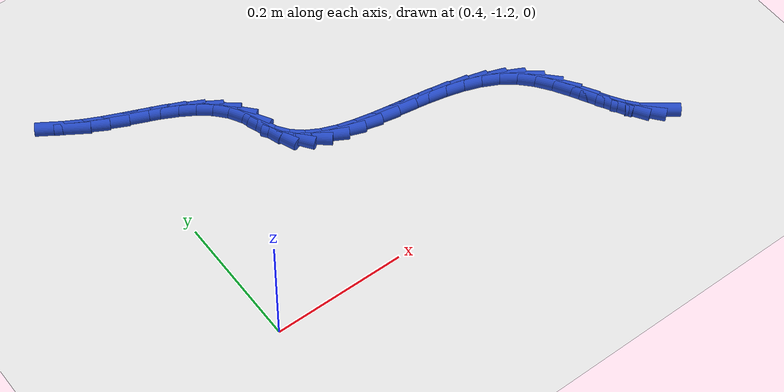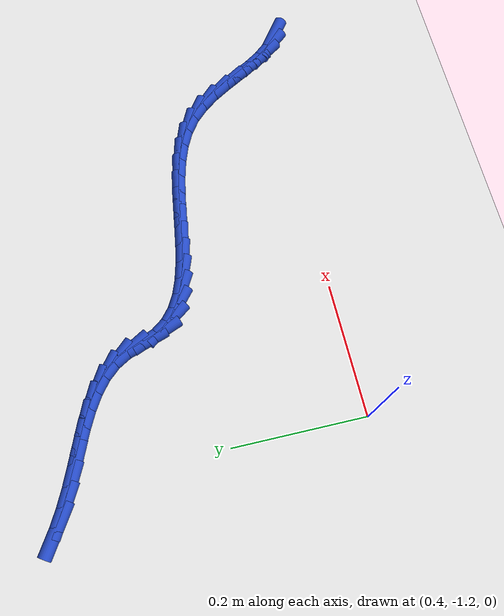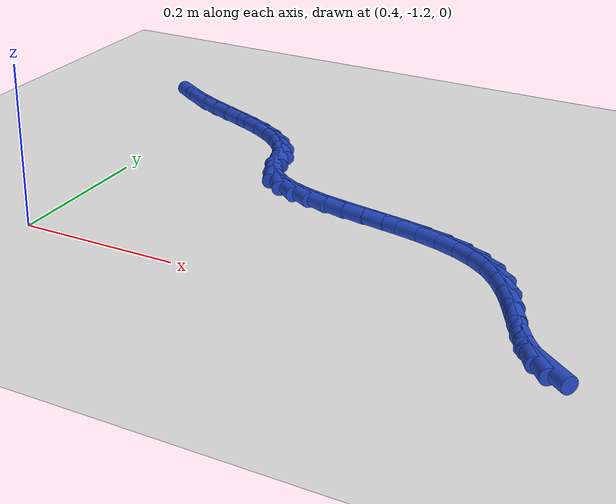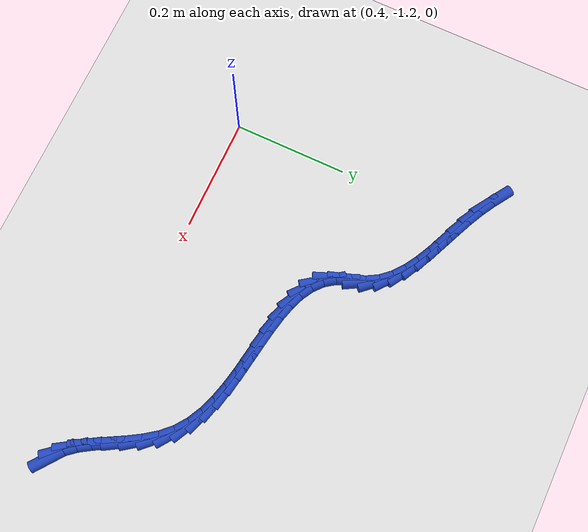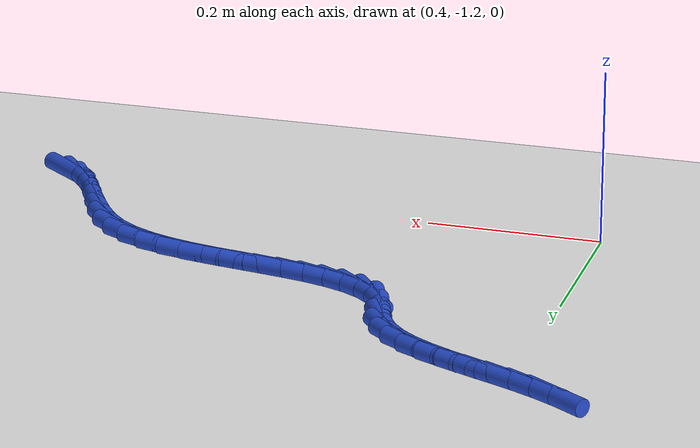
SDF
<sdf version="1.6">
 <world name="default">
  <model name="ground_plane">
   <static>1</static>
   <link name="link">
    <collision name="collision">
     <geometry><plane><normal>0 0 1</normal><size>100 100</size></plane></geometry>
     <surface><friction><ode><mu>100</mu><mu2>50</mu2></ode></friction></surface>
    </collision>
    <visual name="visual">
     <cast_shadows>0</cast_shadows>
     <geometry><plane><normal>0 0 1</normal><size>100 100</size></plane></geometry>
     <material>
      <script><uri>file://media/materials/scripts/gazebo.material</uri><name>Gazebo/WhiteGlow</name></script>
     </material>
    </visual>
   </link>
  </model>
  <model name="line">
   <link name="link_213">
    <pose>1.040761356759165 -1.2229089613256932 0.01 0 1.57 -0.6482076321445592</pose>
    <collision name="collision">
     <geometry><cylinder><radius>0.01</radius><length>0.08</length></cylinder></geometry>
    </collision>
    <visual name="visual">
     <material>
      <script><name>Gazebo/Blue</name><uri>file://media/materials/scripts/gazebo.material</uri></script>
     </material>
     <geometry><cylinder><radius>0.01</radius><length>0.08</length></cylinder></geometry>
    </visual>
   </link>
   <link name="link_214">
    <pose>1.0250227860344836 -1.2109888818746983 0.01 0 1.57 -0.8736095178655836</pose>
    <collision name="collision">
     <geometry><cylinder><radius>0.01</radius><length>0.08</length></cylinder></geometry>
    </collision>
    <visual name="visual">
     <material>
      <script><name>Gazebo/Blue</name><uri>file://media/materials/scripts/gazebo.material</uri></script>
     </material>
     <geometry><cylinder><radius>0.01</radius><length>0.08</length></cylinder></geometry>
    </visual>
   </link>
   <link name="link_215">
    <pose>1.0108965026068046 -1.1941214910273377 0.01 0 1.57 -1.0008174825694691</pose>
    <collision name="collision">
     <geometry><cylinder><radius>0.01</radius><length>0.08</length></cylinder></geometry>
    </collision>
    <visual name="visual">
     <material>
      <script><name>Gazebo/Blue</name><uri>file://media/materials/scripts/gazebo.material</uri></script>
     </material>
     <geometry><cylinder><radius>0.01</radius><length>0.08</length></cylinder></geometry>
    </visual>
   </link>
   <link name="link_216">
    <pose>0.9977190584780669 -1.1735618898792934 0.01 0 1.57 -1.0578013813730276</pose>
    <collision name="collision">
     <geometry><cylinder><radius>0.01</radius><length>0.08</length></cylinder></geometry>
    </collision>
    <visual name="visual">
     <material>
      <script><name>Gazebo/Blue</name><uri>file://media/materials/scripts/gazebo.material</uri></script>
     </material>
     <geometry><cylinder><radius>0.01</radius><length>0.08</length></cylinder></geometry>
    </visual>
   </link>
   <link name="link_217">
    <pose>0.9847995501489628 -1.1506263858347339 0.01 0 1.57 -1.0630017706810797</pose>
    <collision name="collision">
     <geometry><cylinder><radius>0.01</radius><length>0.08</length></cylinder></geometry>
    </collision>
    <visual name="visual">
     <material>
      <script><name>Gazebo/Blue</name><uri>file://media/materials/scripts/gazebo.material</uri></script>
     </material>
     <geometry><cylinder><radius>0.01</radius><length>0.08</length></cylinder></geometry>
    </visual>
   </link>
   <link name="link_218">
    <pose>0.971447074120187 -1.126631286297831 0.01 0 1.57 -1.0231812548515162</pose>
    <collision name="collision">
     <geometry><cylinder><radius>0.01</radius><length>0.08</length></cylinder></geometry>
    </collision>
    <visual name="visual">
     <material>
      <script><name>Gazebo/Blue</name><uri>file://media/materials/scripts/gazebo.material</uri></script>
     </material>
     <geometry><cylinder><radius>0.01</radius><length>0.08</length></cylinder></geometry>
    </visual>
   </link>
   <link name="link_219">
    <pose>0.9569707268924313 -1.1028928986727526 0.01 0 1.57 -0.9369769511941605</pose>
    <collision name="collision">
     <geometry><cylinder><radius>0.01</radius><length>0.08</length></cylinder></geometry>
    </collision>
    <visual name="visual">
     <material>
      <script><name>Gazebo/Blue</name><uri>file://media/materials/scripts/gazebo.material</uri></script>
     </material>
     <geometry><cylinder><radius>0.01</radius><length>0.08</length></cylinder></geometry>
    </visual>
   </link>
   <link name="link_220">
    <pose>0.9406796049663892 -1.0807275303636688 0.01 0 1.57 -0.7980373267201776</pose>
    <collision name="collision">
     <geometry><cylinder><radius>0.01</radius><length>0.08</length></cylinder></geometry>
    </collision>
    <visual name="visual">
     <material>
      <script><name>Gazebo/Blue</name><uri>file://media/materials/scripts/gazebo.material</uri></script>
     </material>
     <geometry><cylinder><radius>0.01</radius><length>0.08</length></cylinder></geometry>
    </visual>
   </link>
   <link name="link_221">
    <pose>0.9218835820473269 -1.0614502673392743 0.01 0 1.57 -0.6225024436875692</pose>
    <collision name="collision">
     <geometry><cylinder><radius>0.01</radius><length>0.08</length></cylinder></geometry>
    </collision>
    <visual name="visual">
     <material>
      <script><name>Gazebo/Blue</name><uri>file://media/materials/scripts/gazebo.material</uri></script>
     </material>
     <geometry><cylinder><radius>0.01</radius><length>0.08</length></cylinder></geometry>
    </visual>
   </link>
   <link name="link_222">
    <pose>0.9002021350016642 -1.0458896309015049 0.01 0 1.57 -0.4689102526663218</pose>
    <collision name="collision">
     <geometry><cylinder><radius>0.01</radius><length>0.08</length></cylinder></geometry>
    </collision>
    <visual name="visual">
     <material>
      <script><name>Gazebo/Blue</name><uri>file://media/materials/scripts/gazebo.material</uri></script>
     </material>
     <geometry><cylinder><radius>0.01</radius><length>0.08</length></cylinder></geometry>
    </visual>
   </link>
   <link name="link_223">
    <pose>0.8760355978408328 -1.0336469665859644 0.01 0 1.57 -0.34917521261057194</pose>
    <collision name="collision">
     <geometry><cylinder><radius>0.01</radius><length>0.08</length></cylinder></geometry>
    </collision>
    <visual name="visual">
     <material>
      <script><name>Gazebo/Blue</name><uri>file://media/materials/scripts/gazebo.material</uri></script>
     </material>
     <geometry><cylinder><radius>0.01</radius><length>0.08</length></cylinder></geometry>
    </visual>
   </link>
   <link name="link_224">
    <pose>0.8499054998887734 -1.0241331523741652 0.01 0 1.57 -0.2613308728624366</pose>
    <collision name="collision">
     <geometry><cylinder><radius>0.01</radius><length>0.08</length></cylinder></geometry>
    </collision>
    <visual name="visual">
     <material>
      <script><name>Gazebo/Blue</name><uri>file://media/materials/scripts/gazebo.material</uri></script>
     </material>
     <geometry><cylinder><radius>0.01</radius><length>0.08</length></cylinder></geometry>
    </visual>
   </link>
   <link name="link_225">
    <pose>0.822333370469426 -1.0167590662476187 0.01 0 1.57 -0.20160878531884716</pose>
    <collision name="collision">
     <geometry><cylinder><radius>0.01</radius><length>0.08</length></cylinder></geometry>
    </collision>
    <visual name="visual">
     <material>
      <script><name>Gazebo/Blue</name><uri>file://media/materials/scripts/gazebo.material</uri></script>
     </material>
     <geometry><cylinder><radius>0.01</radius><length>0.08</length></cylinder></geometry>
    </visual>
   </link>
   <link name="link_226">
    <pose>0.793840738906731 -1.0109355861878373 0.01 0 1.57 -0.1667219275314017</pose>
    <collision name="collision">
     <geometry><cylinder><radius>0.01</radius><length>0.08</length></cylinder></geometry>
    </collision>
    <visual name="visual">
     <material>
      <script><name>Gazebo/Blue</name><uri>file://media/materials/scripts/gazebo.material</uri></script>
     </material>
     <geometry><cylinder><radius>0.01</radius><length>0.08</length></cylinder></geometry>
    </visual>
   </link>
   <link name="link_227">
    <pose>0.7649491345246308 -1.0060735901763342 0.01 0 1.57 -0.1548091055040923</pose>
    <collision name="collision">
     <geometry><cylinder><radius>0.01</radius><length>0.08</length></cylinder></geometry>
    </collision>
    <visual name="visual">
     <material>
      <script><name>Gazebo/Blue</name><uri>file://media/materials/scripts/gazebo.material</uri></script>
     </material>
     <geometry><cylinder><radius>0.01</radius><length>0.08</length></cylinder></geometry>
    </visual>
   </link>
   <link name="link_228">
    <pose>0.7361800866470649 -1.0015839561946205 0.01 0 1.57 -0.16580245502117597</pose>
    <collision name="collision">
     <geometry><cylinder><radius>0.01</radius><length>0.08</length></cylinder></geometry>
    </collision>
    <visual name="visual">
     <material>
      <script><name>Gazebo/Blue</name><uri>file://media/materials/scripts/gazebo.material</uri></script>
     </material>
     <geometry><cylinder><radius>0.01</radius><length>0.08</length></cylinder></geometry>
    </visual>
   </link>
   <link name="link_229">
    <pose>0.708055124597974 -0.9968775622242089 0.01 0 1.57 -0.20168629851852543</pose>
    <collision name="collision">
     <geometry><cylinder><radius>0.01</radius><length>0.08</length></cylinder></geometry>
    </collision>
    <visual name="visual">
     <material>
      <script><name>Gazebo/Blue</name><uri>file://media/materials/scripts/gazebo.material</uri></script>
     </material>
     <geometry><cylinder><radius>0.01</radius><length>0.08</length></cylinder></geometry>
    </visual>
   </link>
   <link name="link_230">
    <pose>0.6810957777012989 -0.9913652862466114 0.01 0 1.57 -0.2667993004606567</pose>
    <collision name="collision">
     <geometry><cylinder><radius>0.01</radius><length>0.08</length></cylinder></geometry>
    </collision>
    <visual name="visual">
     <material>
      <script><name>Gazebo/Blue</name><uri>file://media/materials/scripts/gazebo.material</uri></script>
     </material>
     <geometry><cylinder><radius>0.01</radius><length>0.08</length></cylinder></geometry>
    </visual>
   </link>
   <link name="link_231">
    <pose>0.6558235752809805 -0.9844580062433407 0.01 0 1.57 -0.36795991834045894</pose>
    <collision name="collision">
     <geometry><cylinder><radius>0.01</radius><length>0.08</length></cylinder></geometry>
    </collision>
    <visual name="visual">
     <material>
      <script><name>Gazebo/Blue</name><uri>file://media/materials/scripts/gazebo.material</uri></script>
     </material>
     <geometry><cylinder><radius>0.01</radius><length>0.08</length></cylinder></geometry>
    </visual>
   </link>
   <link name="link_232">
    <pose>0.6327600466609589 -0.9755666001959084 0.01 0 1.57 -0.5134035112868938</pose>
    <collision name="collision">
     <geometry><cylinder><radius>0.01</radius><length>0.08</length></cylinder></geometry>
    </collision>
    <visual name="visual">
     <material>
      <script><name>Gazebo/Blue</name><uri>file://media/materials/scripts/gazebo.material</uri></script>
     </material>
     <geometry><cylinder><radius>0.01</radius><length>0.08</length></cylinder></geometry>
    </visual>
   </link>
   <link name="link_233">
    <pose>0.612426721165175 -0.9641019460858269 0.01 0 1.57 -0.7081420810162341</pose>
    <collision name="collision">
     <geometry><cylinder><radius>0.01</radius><length>0.08</length></cylinder></geometry>
    </collision>
    <visual name="visual">
     <material>
      <script><name>Gazebo/Blue</name><uri>file://media/materials/scripts/gazebo.material</uri></script>
     </material>
     <geometry><cylinder><radius>0.01</radius><length>0.08</length></cylinder></geometry>
    </visual>
   </link>
   <link name="link_234">
    <pose>0.595345128117569 -0.9494749218946082 0.01 0 1.57 -0.9440623308720776</pose>
    <collision name="collision">
     <geometry><cylinder><radius>0.01</radius><length>0.08</length></cylinder></geometry>
    </collision>
    <visual name="visual">
     <material>
      <script><name>Gazebo/Blue</name><uri>file://media/materials/scripts/gazebo.material</uri></script>
     </material>
     <geometry><cylinder><radius>0.01</radius><length>0.08</length></cylinder></geometry>
    </visual>
   </link>
   <link name="link_235">
    <pose>0.5820367968420828 -0.9310964056037653 0.01 0 1.57 -1.1902077306766168</pose>
    <collision name="collision">
     <geometry><cylinder><radius>0.01</radius><length>0.08</length></cylinder></geometry>
    </collision>
    <visual name="visual">
     <material>
      <script><name>Gazebo/Blue</name><uri>file://media/materials/scripts/gazebo.material</uri></script>
     </material>
     <geometry><cylinder><radius>0.01</radius><length>0.08</length></cylinder></geometry>
    </visual>
   </link>
   <link name="link_236">
    <pose>0.57296729096676 -0.9084280460262033 0.01 0 1.57 -1.2528259361757816</pose>
    <collision name="collision">
     <geometry><cylinder><radius>0.01</radius><length>0.08</length></cylinder></geometry>
    </collision>
    <visual name="visual">
     <material>
      <script><name>Gazebo/Blue</name><uri>file://media/materials/scripts/gazebo.material</uri></script>
     </material>
     <geometry><cylinder><radius>0.01</radius><length>0.08</length></cylinder></geometry>
    </visual>
   </link>
   <link name="link_237">
    <pose>0.5649946175107996 -0.884205187072891 0.01 0 1.57 -1.0472901759310793</pose>
    <collision name="collision">
     <geometry><cylinder><radius>0.01</radius><length>0.08</length></cylinder></geometry>
    </collision>
    <visual name="visual">
     <material>
      <script><name>Gazebo/Blue</name><uri>file://media/materials/scripts/gazebo.material</uri></script>
     </material>
     <geometry><cylinder><radius>0.01</radius><length>0.08</length></cylinder></geometry>
    </visual>
   </link>
   <link name="link_238">
    <pose>0.5528469254958809 -0.8631602658791827 0.01 0 1.57 -0.8379709378869314</pose>
    <collision name="collision">
     <geometry><cylinder><radius>0.01</radius><length>0.08</length></cylinder></geometry>
    </collision>
    <visual name="visual">
     <material>
      <script><name>Gazebo/Blue</name><uri>file://media/materials/scripts/gazebo.material</uri></script>
     </material>
     <geometry><cylinder><radius>0.01</radius><length>0.08</length></cylinder></geometry>
    </visual>
   </link>
   <link name="link_239">
    <pose>0.5366840066919756 -0.8452018387453314 0.01 0 1.57 -0.6699988747550769</pose>
    <collision name="collision">
     <geometry><cylinder><radius>0.01</radius><length>0.08</length></cylinder></geometry>
    </collision>
    <visual name="visual">
     <material>
      <script><name>Gazebo/Blue</name><uri>file://media/materials/scripts/gazebo.material</uri></script>
     </material>
     <geometry><cylinder><radius>0.01</radius><length>0.08</length></cylinder></geometry>
    </visual>
   </link>
   <link name="link_240">
    <pose>0.5171984631565061 -0.8297643712207088 0.01 0 1.57 -0.5474614003438182</pose>
    <collision name="collision">
     <geometry><cylinder><radius>0.01</radius><length>0.08</length></cylinder></geometry>
    </collision>
    <visual name="visual">
     <material>
      <script><name>Gazebo/Blue</name><uri>file://media/materials/scripts/gazebo.material</uri></script>
     </material>
     <geometry><cylinder><radius>0.01</radius><length>0.08</length></cylinder></geometry>
    </visual>
   </link>
   <link name="link_241">
    <pose>0.4950828969468941 -0.816282328854686 0.01 0 1.57 -0.46582901051127984</pose>
    <collision name="collision">
     <geometry><cylinder><radius>0.01</radius><length>0.08</length></cylinder></geometry>
    </collision>
    <visual name="visual">
     <material>
      <script><name>Gazebo/Blue</name><uri>file://media/materials/scripts/gazebo.material</uri></script>
     </material>
     <geometry><cylinder><radius>0.01</radius><length>0.08</length></cylinder></geometry>
    </visual>
   </link>
   <link name="link_242">
    <pose>0.4710299101205617 -0.8041901771966343 0.01 0 1.57 -0.4190270275404247</pose>
    <collision name="collision">
     <geometry><cylinder><radius>0.01</radius><length>0.08</length></cylinder></geometry>
    </collision>
    <visual name="visual">
     <material>
      <script><name>Gazebo/Blue</name><uri>file://media/materials/scripts/gazebo.material</uri></script>
     </material>
     <geometry><cylinder><radius>0.01</radius><length>0.08</length></cylinder></geometry>
    </visual>
   </link>
   <link name="link_243">
    <pose>0.4457321047349301 -0.7929223817959252 0.01 0 1.57 -0.4026146747548991</pose>
    <collision name="collision">
     <geometry><cylinder><radius>0.01</radius><length>0.08</length></cylinder></geometry>
    </collision>
    <visual name="visual">
     <material>
      <script><name>Gazebo/Blue</name><uri>file://media/materials/scripts/gazebo.material</uri></script>
     </material>
     <geometry><cylinder><radius>0.01</radius><length>0.08</length></cylinder></geometry>
    </visual>
   </link>
   <link name="link_244">
    <pose>0.4198820828474229 -0.7819134082019304 0.01 0 1.57 -0.41461917227066925</pose>
    <collision name="collision">
     <geometry><cylinder><radius>0.01</radius><length>0.08</length></cylinder></geometry>
    </collision>
    <visual name="visual">
     <material>
      <script><name>Gazebo/Blue</name><uri>file://media/materials/scripts/gazebo.material</uri></script>
     </material>
     <geometry><cylinder><radius>0.01</radius><length>0.08</length></cylinder></geometry>
    </visual>
   </link>
   <link name="link_245">
    <pose>0.39417244651546146 -0.7705977219640213 0.01 0 1.57 -0.4552568410899066</pose>
    <collision name="collision">
     <geometry><cylinder><radius>0.01</radius><length>0.08</length></cylinder></geometry>
    </collision>
    <visual name="visual">
     <material>
      <script><name>Gazebo/Blue</name><uri>file://media/materials/scripts/gazebo.material</uri></script>
     </material>
     <geometry><cylinder><radius>0.01</radius><length>0.08</length></cylinder></geometry>
    </visual>
   </link>
   <link name="link_246">
    <pose>0.36928873809589274 -0.758415775219887 0.01 0 1.57 -0.5135583954936715</pose>
    <collision name="collision">
     <geometry><cylinder><radius>0.01</radius><length>0.08</length></cylinder></geometry>
    </collision>
    <visual name="visual">
     <material>
      <script><name>Gazebo/Blue</name><uri>file://media/materials/scripts/gazebo.material</uri></script>
     </material>
     <geometry><cylinder><radius>0.01</radius><length>0.08</length></cylinder></geometry>
    </visual>
   </link>
   <link name="link_247">
    <pose>0.345615599056682 -0.7450631824511624 0.01 0 1.57 -0.5722188230026654</pose>
    <collision name="collision">
     <geometry><cylinder><radius>0.01</radius><length>0.08</length></cylinder></geometry>
    </collision>
    <visual name="visual">
     <material>
      <script><name>Gazebo/Blue</name><uri>file://media/materials/scripts/gazebo.material</uri></script>
     </material>
     <geometry><cylinder><radius>0.01</radius><length>0.08</length></cylinder></geometry>
    </visual>
   </link>
  </model>
 </world>
</sdf>
